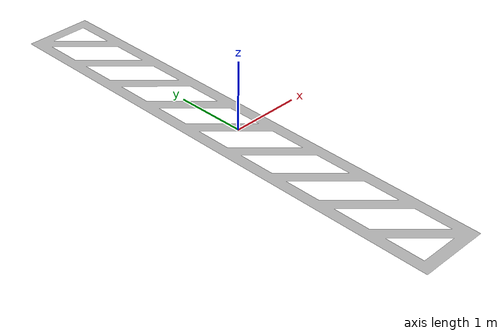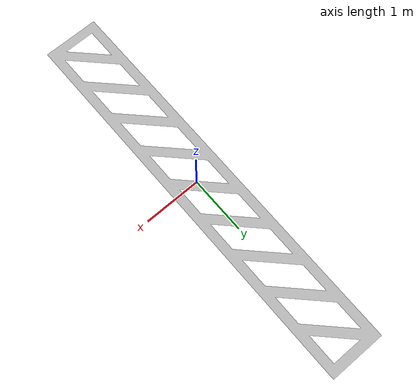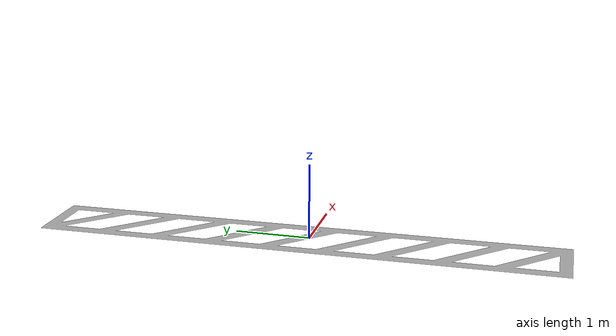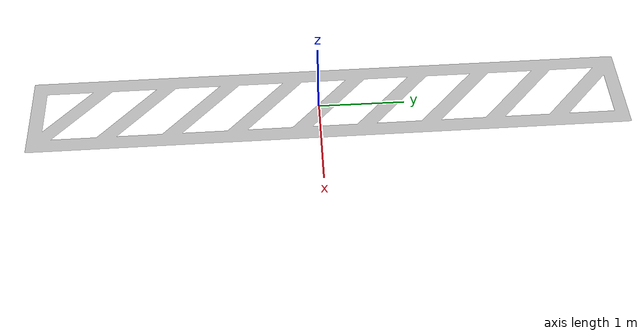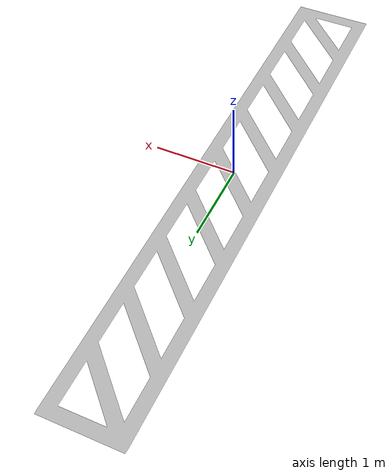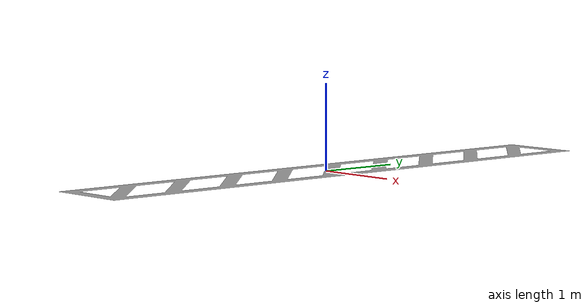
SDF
<sdf version="1.7">
  <model name="hazard_lines_striped" canonical_link="node0_link">
    <link name="node0_link">
      <visual name="node0">
        <pose>0 0 0 1.5708 0 0</pose>
        <geometry>
          <mesh>
            <uri>model://hazard_lines_striped/meshes/hazard_lines_striped.obj</uri>
            <scale>1 1 1</scale>
          </mesh>
        </geometry>
      </visual>
    </link>
  </model>
</sdf>
